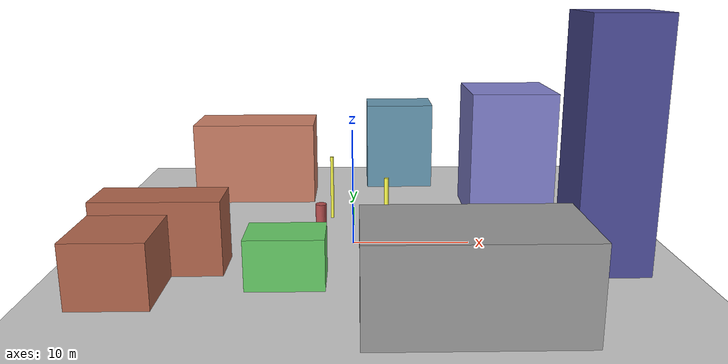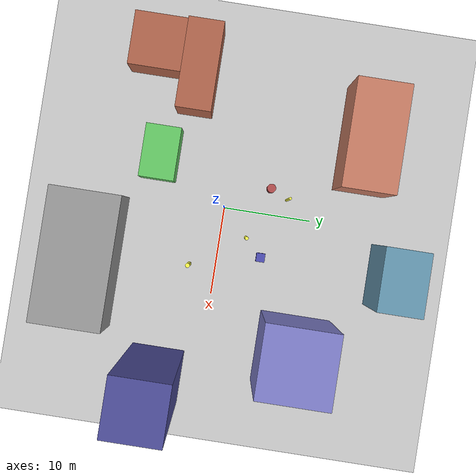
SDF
<?xml version="1.0" encoding="UTF-8"?>
<sdf version="1.9">
  <world name="city">
    <!-- Physics configuration -->
    <physics type="ode">
      <max_step_size>0.004</max_step_size>
      <real_time_factor>1.0</real_time_factor>
      <real_time_update_rate>250</real_time_update_rate>
    </physics>
    <gravity>0 0 -9.8</gravity>
    <magnetic_field>6e-06 2.3e-05 -4.2e-05</magnetic_field>
    <atmosphere type="adiabatic"/>
    <!-- Scene settings -->
    <scene>
      <ambient>0.4 0.4 0.4 1</ambient>
      <background>0.7 0.7 0.7 1</background>
      <shadows>true</shadows>
    </scene>

    <!-- Directional sunlight -->
    <light name="sun" type="directional">
      <pose>0 0 10 0 0 0</pose>
      <cast_shadows>true</cast_shadows>
      <intensity>1</intensity>
      <direction>-0.5 0.1 -0.9</direction>
      <diffuse>1 1 1 1</diffuse>
      <specular>0.5 0.5 0.5 1</specular>
    </light>

    <!-- Ground plane -->
    <model name="ground_plane">
      <static>true</static>
      <link name="link">
        <collision name="collision">
          <geometry>
            <plane>
              <normal>0 0 1</normal>
              <size>100 100</size>
            </plane>
          </geometry>
        </collision>
        <visual name="visual">
          <geometry>
            <plane>
              <normal>0 0 1</normal>
              <size>100 100</size>
            </plane>
          </geometry>
          <material>
            <ambient>0.8 0.8 0.8 1</ambient>
            <diffuse>0.8 0.8 0.8 1</diffuse>
            <specular>0.8 0.8 0.8 1</specular>
          </material>
        </visual>
      </link>
    </model>
    <spherical_coordinates>
      <surface_model>EARTH_WGS84</surface_model>
      <world_frame_orientation>ENU</world_frame_orientation>
      <latitude_deg>47.397971057728974</latitude_deg>
      <longitude_deg> 8.546163739800146</longitude_deg>
      <elevation>0</elevation>
    </spherical_coordinates>

    <!-- Optional: Add a few reference objects for scale -->
    <model name="box1">
      <pose>5 5 0.5 0 0 0</pose>
      <link name="link">
        <collision name="collision">
          <geometry>
            <box>
              <size>1 1 1</size>
            </box>
          </geometry>
        </collision>
        <visual name="visual">
          <geometry>
            <box>
              <size>1 1 1</size>
            </box>
          </geometry>
          <material>
            <ambient>0.3 0.3 0.7 1</ambient>
            <diffuse>0.3 0.3 0.7 1</diffuse>
          </material>
        </visual>
      </link>
    </model>

    <model name="cylinder1">
      <pose>-3 5 1 0 0 0</pose>
      <link name="link">
        <collision name="collision">
          <geometry>
            <cylinder>
              <radius>0.5</radius>
              <length>2</length>
            </cylinder>
          </geometry>
        </collision>
        <visual name="visual">
          <geometry>
            <cylinder>
              <radius>0.5</radius>
              <length>2</length>
            </cylinder>
          </geometry>
          <material>
            <ambient>0.7 0.3 0.3 1</ambient>
            <diffuse>0.7 0.3 0.3 1</diffuse>
          </material>
        </visual>
      </link>
    </model>

    <!-- Building 1: Office tower -->
    <model name="building_office">
      <static>true</static>
      <pose>15 10 6 0 0 0</pose>
      <link name="link">
        <collision name="collision">
          <geometry>
            <box>
              <size>8 8 12</size>
            </box>
          </geometry>
        </collision>
        <visual name="visual">
          <geometry>
            <box>
              <size>8 8 12</size>
            </box>
          </geometry>
          <material>
            <ambient>0.4 0.4 0.6 1</ambient>
            <diffuse>0.5 0.5 0.8 1</diffuse>
            <specular>0.2 0.2 0.3 1</specular>
          </material>
        </visual>
      </link>
    </model>

    <!-- Building 2: Residential block -->
    <model name="building_residential">
      <static>true</static>
      <pose>-10 15 4 0 0 0</pose>
      <link name="link">
        <collision name="collision">
          <geometry>
            <box>
              <size>12 6 8</size>
            </box>
          </geometry>
        </collision>
        <visual name="visual">
          <geometry>
            <box>
              <size>12 6 8</size>
            </box>
          </geometry>
          <material>
            <ambient>0.6 0.4 0.3 1</ambient>
            <diffuse>0.8 0.5 0.4 1</diffuse>
            <specular>0.1 0.1 0.1 1</specular>
          </material>
        </visual>
      </link>
    </model>

    <!-- Building 3: Small shop -->
    <model name="building_shop">
      <static>true</static>
      <pose>-5 -8 2 0 0 0</pose>
      <link name="link">
        <collision name="collision">
          <geometry>
            <box>
              <size>6 4 4</size>
            </box>
          </geometry>
        </collision>
        <visual name="visual">
          <geometry>
            <box>
              <size>6 4 4</size>
            </box>
          </geometry>
          <material>
            <ambient>0.3 0.6 0.3 1</ambient>
            <diffuse>0.4 0.8 0.4 1</diffuse>
            <specular>0.2 0.2 0.2 1</specular>
          </material>
        </visual>
      </link>
    </model>

    <!-- Building 4: Tall skyscraper -->
    <model name="building_skyscraper">
      <static>true</static>
      <pose>20 -5 10 0 0 0</pose>
      <link name="link">
        <collision name="collision">
          <geometry>
            <box>
              <size>6 6 20</size>
            </box>
          </geometry>
        </collision>
        <visual name="visual">
          <geometry>
            <box>
              <size>6 6 20</size>
            </box>
          </geometry>
          <material>
            <ambient>0.2 0.2 0.4 1</ambient>
            <diffuse>0.3 0.3 0.6 1</diffuse>
            <specular>0.5 0.5 0.7 1</specular>
          </material>
        </visual>
      </link>
    </model>

    <!-- Building 5: L-shaped complex -->
    <model name="building_complex_main">
      <static>true</static>
      <pose>-15 -5 3 0 0 0</pose>
      <link name="link">
        <collision name="collision">
          <geometry>
            <box>
              <size>10 4 6</size>
            </box>
          </geometry>
        </collision>
        <visual name="visual">
          <geometry>
            <box>
              <size>10 4 6</size>
            </box>
          </geometry>
          <material>
            <ambient>0.5 0.3 0.2 1</ambient>
            <diffuse>0.7 0.4 0.3 1</diffuse>
            <specular>0.2 0.1 0.1 1</specular>
          </material>
        </visual>
      </link>
    </model>

    <model name="building_complex_wing">
      <static>true</static>
      <pose>-17 -10 2.5 0 0 0</pose>
      <link name="link">
        <collision name="collision">
          <geometry>
            <box>
              <size>6 6 5</size>
            </box>
          </geometry>
        </collision>
        <visual name="visual">
          <geometry>
            <box>
              <size>6 6 5</size>
            </box>
          </geometry>
          <material>
            <ambient>0.5 0.3 0.2 1</ambient>
            <diffuse>0.7 0.4 0.3 1</diffuse>
            <specular>0.2 0.1 0.1 1</specular>
          </material>
        </visual>
      </link>
    </model>

    <!-- Building 6: Industrial warehouse -->
    <model name="building_warehouse">
      <static>true</static>
      <pose>8 -15 3.5 0 0 0</pose>
      <link name="link">
        <collision name="collision">
          <geometry>
            <box>
              <size>15 8 7</size>
            </box>
          </geometry>
        </collision>
        <visual name="visual">
          <geometry>
            <box>
              <size>15 8 7</size>
            </box>
          </geometry>
          <material>
            <ambient>0.4 0.4 0.4 1</ambient>
            <diffuse>0.6 0.6 0.6 1</diffuse>
            <specular>0.3 0.3 0.3 1</specular>
          </material>
        </visual>
      </link>
    </model>

    <!-- Building 7: Medium office -->
    <model name="building_medium_office">
      <static>true</static>
      <pose>5 20 4.5 0 0 0</pose>
      <link name="link">
        <collision name="collision">
          <geometry>
            <box>
              <size>7 5 9</size>
            </box>
          </geometry>
        </collision>
        <visual name="visual">
          <geometry>
            <box>
              <size>7 5 9</size>
            </box>
          </geometry>
          <material>
            <ambient>0.3 0.4 0.5 1</ambient>
            <diffuse>0.4 0.6 0.7 1</diffuse>
            <specular>0.3 0.3 0.4 1</specular>
          </material>
        </visual>
      </link>
    </model>

    <!-- Obstacle poles for low-level navigation -->
    <model name="pole1">
      <static>true</static>
      <pose>3 3 2.5 0 0 0</pose>
      <link name="link">
        <collision name="collision">
          <geometry>
            <cylinder>
              <radius>0.2</radius>
              <length>5</length>
            </cylinder>
          </geometry>
        </collision>
        <visual name="visual">
          <geometry>
            <cylinder>
              <radius>0.2</radius>
              <length>5</length>
            </cylinder>
          </geometry>
          <material>
            <ambient>0.8 0.8 0.2 1</ambient>
            <diffuse>1.0 1.0 0.3 1</diffuse>
          </material>
        </visual>
      </link>
    </model>

    <model name="pole2">
      <static>true</static>
      <pose>-2 7 3 0 0 0</pose>
      <link name="link">
        <collision name="collision">
          <geometry>
            <cylinder>
              <radius>0.15</radius>
              <length>6</length>
            </cylinder>
          </geometry>
        </collision>
        <visual name="visual">
          <geometry>
            <cylinder>
              <radius>0.15</radius>
              <length>6</length>
            </cylinder>
          </geometry>
          <material>
            <ambient>0.8 0.8 0.2 1</ambient>
            <diffuse>1.0 1.0 0.3 1</diffuse>
          </material>
        </visual>
      </link>
    </model>

    <model name="pole3">
      <static>true</static>
      <pose>7 -3 2 0 0 0</pose>
      <link name="link">
        <collision name="collision">
          <geometry>
            <cylinder>
              <radius>0.25</radius>
              <length>4</length>
            </cylinder>
          </geometry>
        </collision>
        <visual name="visual">
          <geometry>
            <cylinder>
              <radius>0.25</radius>
              <length>4</length>
            </cylinder>
          </geometry>
          <material>
            <ambient>0.8 0.8 0.2 1</ambient>
            <diffuse>1.0 1.0 0.3 1</diffuse>
          </material>
        </visual>
      </link>
    </model>
  </world>
</sdf>
